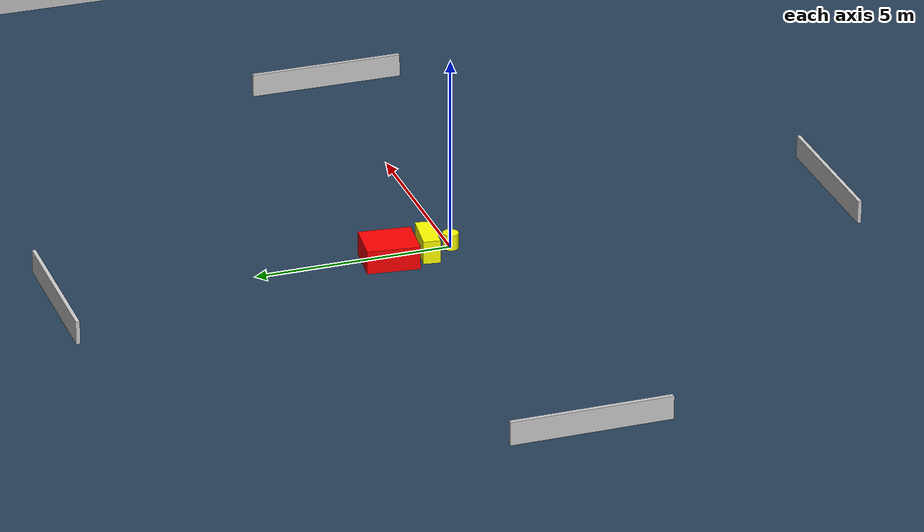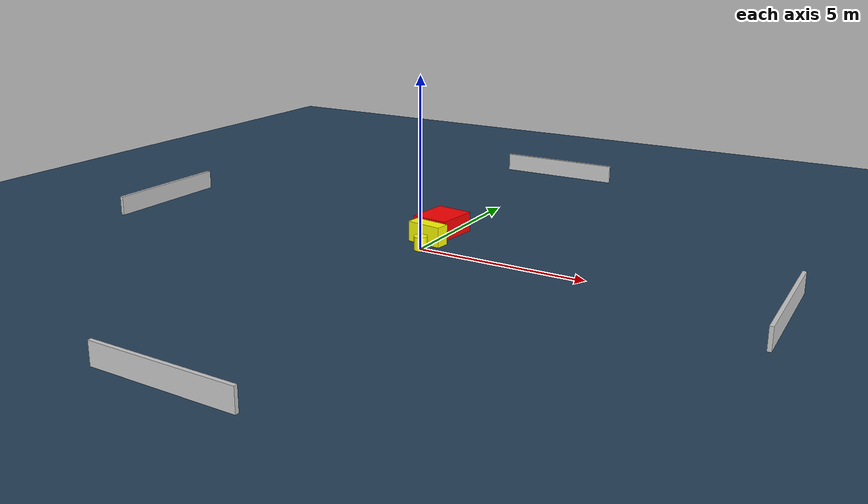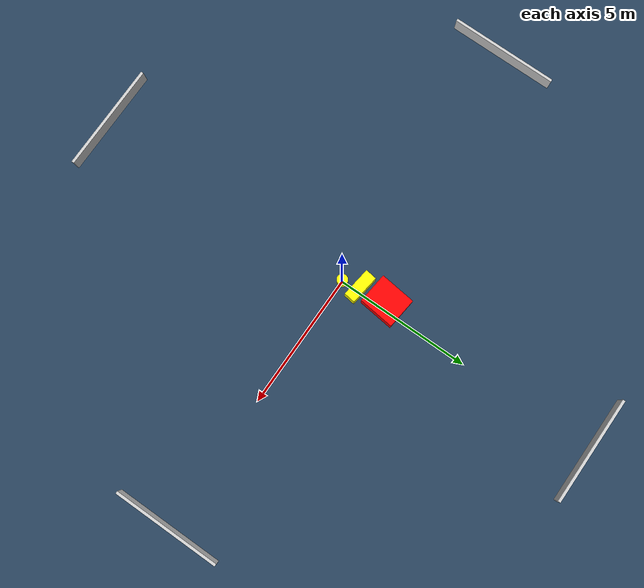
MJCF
<?xml version="1.0" ?>
<mujoco model="generated_environment">
  <option timestep="0.01" integrator="RK4" cone="elliptic"/>
  <default>
    <geom density="1"/>
  </default>
  <asset>
    <texture builtin="gradient" height="3072" name="skybox" rgb1="0.3 0.5 0.7" rgb2="0 0 0" type="skybox" width="512"/>
    <texture builtin="checker" height="300" name="groundplane" rgb1="0.2 0.3 0.4" rgb2="0.1 0.2 0.3" type="2d" width="300"/>
    <material name="groundplane" reflectance="0.2" texrepeat="5 5" texture="groundplane"/>
  </asset>
  <worldbody>
    <light dir="0 0 -1" directional="true" pos="0 0 1.5"/>
    <geom condim="3" friction="0.5 0.005 0.001" material="groundplane" name="floor" pos="0 0 0" size="0 0 0.05" type="plane"/>
    <body name="walls">
      <geom name="wall_1" condim="4" pos="-10.0 0.0 0.3" rgba="0.800000011920929 0.800000011920929 0.800000011920929 1.0" size="0.05 2.0 0.3" type="box"/>
      <geom name="wall_2" condim="4" pos="10.0 0.0 0.3" rgba="0.800000011920929 0.800000011920929 0.800000011920929 1.0" size="0.05 2.0 0.3" type="box"/>
      <geom name="wall_3" condim="4" pos="0.0 -10.0 0.3" rgba="0.800000011920929 0.800000011920929 0.800000011920929 1.0" size="2.0 0.05 0.3" type="box"/>
      <geom name="wall_4" condim="4" pos="0.0 10.0 0.3" rgba="0.800000011920929 0.800000011920929 0.800000011920929 1.0" size="2.0 0.05 0.3" type="box"/>
    </body>
    <body name="robot">
      <joint name="joint_x" type="slide" pos="0 0 0" axis="1 0 0"/>
      <joint name="joint_y" type="slide" pos="0 0 0" axis="0 1 0"/>
      <geom name="robot" type="cylinder" pos="0.0 0.0 0.2" size="0.2 0.2 0.0" mass="5.0" friction="1.0 0.005 0.0001" condim="4" rgba="1.0 1.0 0.0 1.0"/>
    </body>
    <body name="obstacle_1_movable">
      <geom name="obstacle_1_movable" condim="4" pos="-0.1425355524959563 0.6414129984966445 0.3" euler="0 0 262.3707880889064" friction="0.0 0.005 0.001" rgba="1.0 1.0 0.0 1.0" size="0.21202219305981396 0.5502391254538253 0.3" type="box" mass="0.1"/>
      <joint type="free"/>
    </body>
    <body name="obstacle_2_static">
      <geom name="obstacle_2_static" condim="4" pos="-0.2465348853735207 1.6683531041750224 0.3" euler="0 0 263.5975090061498" friction="0.0 0.005 0.001" rgba="1.0 0.0 0.0 1.0" size="0.6627079425254444 0.5677270296738424 0.3" type="box"/>
    </body>
  </worldbody>
  <actuator>
    <motor name="actuator_x" joint="joint_x" gear="1" ctrlrange="-1 1"/>
    <motor name="actuator_y" joint="joint_y" gear="1" ctrlrange="-1 1"/>
  </actuator>
</mujoco>
